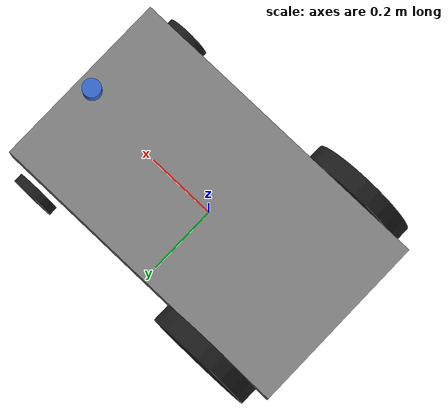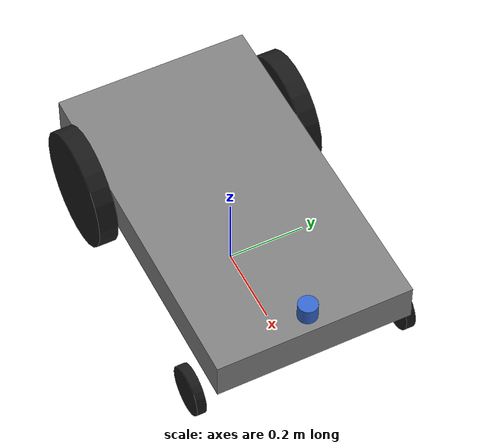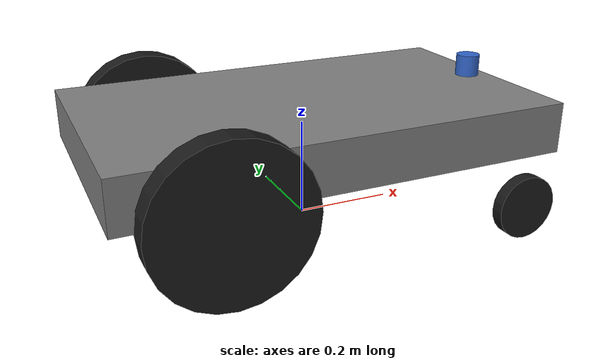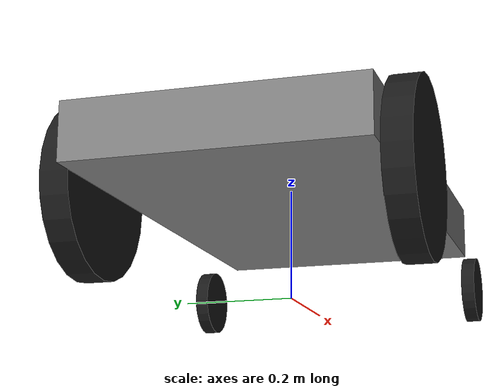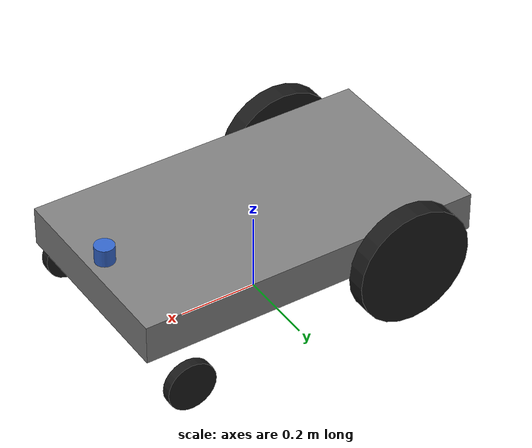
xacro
<?xml version="1.0"?>
<robot name="robosort" xmlns:xacro="http://www.ros.org/wiki/xacro">

  <!-- Properties and Constants -->

  <xacro:property name="PI" value="3.14159265359"/>

  <!-- Robot Body Dimensions (converting inches to meters) -->
  <xacro:property name="body_height" value="0.1016"/>      <!-- 4 inches -->
  <xacro:property name="body_length" value="0.889"/>        <!-- 35 inches -->
  <xacro:property name="body_width" value="0.508"/>         <!-- 20 inches -->

  <!-- Wheel Properties -->
  <xacro:property name="wheel_radius" value="0.1524"/>      <!-- 6 inches (12" diameter) -->
  <xacro:property name="wheel_width" value="0.05"/>         <!-- 2 inches -->
  <xacro:property name="wheel_separation" value="0.558"/>   <!-- 22 inches (20 + 2 per side) -->

  <!-- Caster Wheel Properties -->
  <xacro:property name="caster_radius" value="0.0635"/>    <!-- 5 inch diameter -->
  <xacro:property name="caster_width" value="0.025"/>     <!-- 1 inch width -->
  <xacro:property name="caster_offset_x" value="0.35"/>     <!-- Front position -->
  <xacro:property name="caster_offset_y" value="${wheel_separation/2}"/>     <!-- Aligned with drive wheels -->

  <!-- LiDAR Properties -->
  <xacro:property name="lidar_size" value="0.05"/>
  <xacro:property name="lidar_height" value="0.045"/>     <!-- 45mm height -->
  <xacro:property name="lidar_offset_x" value="0.4008"/>     <!-- Top-front position (moved 2 inches forward) -->
  <xacro:property name="lidar_offset_z" value="${body_height/2 + lidar_height/2}"/>

  <!-- Material Properties -->
  <xacro:property name="body_mass" value="15.0"/>           <!-- kg -->
  <xacro:property name="wheel_mass" value="0.5"/>           <!-- kg -->
  <xacro:property name="caster_mass" value="0.1"/>          <!-- kg -->
  <xacro:property name="lidar_mass" value="0.2"/>           <!-- kg -->

  <!-- Colors -->

  <material name="black">
    <color rgba="0.1 0.1 0.1 1.0"/>
  </material>

  <material name="dark_gray">
    <color rgba="0.3 0.3 0.3 1.0"/>
  </material>

  <material name="gray">
    <color rgba="0.5 0.5 0.5 1.0"/>
  </material>

  <material name="blue">
    <color rgba="0.2 0.4 0.8 1.0"/>
  </material>

  <material name="red">
    <color rgba="0.8 0.2 0.2 1.0"/>
  </material>

  <material name="white">
    <color rgba="0.9 0.9 0.9 1.0"/>
  </material>

  <!-- Inertial Macros -->

  <xacro:macro name="box_inertia" params="m x y z">
    <inertial>
      <mass value="${m}"/>
      <inertia ixx="${m*(y*y+z*z)/12}" ixy="0" ixz="0"
               iyy="${m*(x*x+z*z)/12}" iyz="0"
               izz="${m*(x*x+y*y)/12}"/>
    </inertial>
  </xacro:macro>

  <xacro:macro name="cylinder_inertia" params="m r h">
    <inertial>
      <mass value="${m}"/>
      <inertia ixx="${m*(3*r*r+h*h)/12}" ixy="0" ixz="0"
               iyy="${m*(3*r*r+h*h)/12}" iyz="0"
               izz="${m*r*r/2}"/>
    </inertial>
  </xacro:macro>

  <xacro:macro name="sphere_inertia" params="m r">
    <inertial>
      <mass value="${m}"/>
      <inertia ixx="${2*m*r*r/5}" ixy="0" ixz="0"
               iyy="${2*m*r*r/5}" iyz="0"
               izz="${2*m*r*r/5}"/>
    </inertial>
  </xacro:macro>

  <!-- Base Link (Robot Footprint) -->

  <link name="base_footprint"/>

  <joint name="base_footprint_joint" type="fixed">
    <parent link="base_footprint"/>
    <child link="base_link"/>
    <origin xyz="0 0 ${wheel_radius + body_height/2}" rpy="0 0 0"/>
  </joint>

  <!-- Base Link (Main Body) -->

  <link name="base_link">
    <visual>
      <origin xyz="0 0 0" rpy="0 0 0"/>
      <geometry>
        <box size="${body_length} ${body_width} ${body_height}"/>
      </geometry>
      <material name="gray"/>
    </visual>

    <collision>
      <origin xyz="0 0 0" rpy="0 0 0"/>
      <geometry>
        <box size="${body_length} ${body_width} ${body_height}"/>
      </geometry>
    </collision>

    <xacro:box_inertia m="${body_mass}" x="${body_length}" y="${body_width}" z="${body_height}"/>
  </link>

  <!-- Wheel Macro -->

  <xacro:macro name="wheel" params="prefix reflect axis">
    <link name="${prefix}_wheel_link">
      <visual>
        <origin xyz="0 0 0" rpy="${PI/2} 0 0"/>
        <geometry>
          <cylinder radius="${wheel_radius}" length="${wheel_width}"/>
        </geometry>
        <material name="black"/>
      </visual>

      <collision>
        <origin xyz="0 0 0" rpy="${PI/2} 0 0"/>
        <geometry>
          <cylinder radius="${wheel_radius}" length="${wheel_width}"/>
        </geometry>
      </collision>

      <xacro:cylinder_inertia m="${wheel_mass}" r="${wheel_radius}" h="${wheel_width}"/>
    </link>

    <joint name="${prefix}_wheel_joint" type="continuous">
      <parent link="base_link"/>
      <child link="${prefix}_wheel_link"/>
      <origin xyz="-0.2524 ${reflect*wheel_separation/2} ${-body_height/2}" rpy="0 0 0"/>
      <axis xyz="${axis}"/>
      <limit effort="3.0" velocity="1.4"/>
      <dynamics damping="0.5" friction="0.3"/>
    </joint>
  </xacro:macro>

  <!-- Left and Right Drive Wheels -->
  <xacro:wheel prefix="left" reflect="1" axis="0 1 0"/>
  <xacro:wheel prefix="right" reflect="-1" axis="0 -1 0"/>

  <!-- Caster Wheel Macro -->

  <xacro:macro name="caster_wheel" params="prefix reflect_x reflect_y">
    <link name="${prefix}_caster_link">
      <visual>
        <origin xyz="0 0 0" rpy="${PI/2} 0 0"/>
        <geometry>
          <cylinder radius="${caster_radius}" length="${caster_width}"/>
        </geometry>
        <material name="black"/>
      </visual>

      <collision>
        <origin xyz="0 0 0" rpy="${PI/2} 0 0"/>
        <geometry>
          <cylinder radius="${caster_radius}" length="${caster_width}"/>
        </geometry>
        <surface>
          <friction>
            <ode>
              <mu>0.01</mu>
              <mu2>0.01</mu2>
            </ode>
          </friction>
        </surface>
      </collision>

      <xacro:cylinder_inertia m="${caster_mass}" r="${caster_radius}" h="${caster_width}"/>
    </link>

    <joint name="${prefix}_caster_joint" type="fixed">
      <parent link="base_link"/>
      <child link="${prefix}_caster_link"/>
      <origin xyz="${reflect_x*caster_offset_x} ${reflect_y*caster_offset_y} ${-body_height/2 - 0.1524 + caster_radius}" rpy="0 0 0"/>
    </joint>
  </xacro:macro>

  <!-- Front Caster Wheels -->
  <xacro:caster_wheel prefix="front_left" reflect_x="1" reflect_y="1"/>
  <xacro:caster_wheel prefix="front_right" reflect_x="1" reflect_y="-1"/>

  <!-- LiDAR Sensor -->

  <link name="lidar_link">
    <visual>
      <origin xyz="0 0 0" rpy="0 0 0"/>
      <geometry>
        <cylinder radius="${lidar_size/2}" length="${lidar_height}"/>
      </geometry>
      <material name="blue"/>
    </visual>

    <collision>
      <origin xyz="0 0 0" rpy="0 0 0"/>
      <geometry>
        <cylinder radius="${lidar_size/2}" length="${lidar_height}"/>
      </geometry>
    </collision>

    <xacro:cylinder_inertia m="${lidar_mass}" r="${lidar_size/2}" h="${lidar_height}"/>
  </link>

  <joint name="lidar_joint" type="fixed">
    <parent link="base_link"/>
    <child link="lidar_link"/>
    <origin xyz="${lidar_offset_x} 0 ${lidar_offset_z}" rpy="0 0 0"/>
  </joint>

  <!-- Gazebo Plugins -->

  <!-- Gazebo colors -->
  <gazebo reference="base_link">
    <material>Gazebo/Grey</material>
  </gazebo>

  <gazebo reference="left_wheel_link">
    <material>Gazebo/Black</material>
    <mu1>1.0</mu1>
    <mu2>1.0</mu2>
    <kp>1000000.0</kp>
    <kd>100.0</kd>
    <minDepth>0.001</minDepth>
    <maxVel>1.4</maxVel>
  </gazebo>

  <gazebo reference="right_wheel_link">
    <material>Gazebo/Black</material>
    <mu1>1.0</mu1>
    <mu2>1.0</mu2>
    <kp>1000000.0</kp>
    <kd>100.0</kd>
    <minDepth>0.001</minDepth>
    <maxVel>1.4</maxVel>
  </gazebo>

  <gazebo reference="front_left_caster_link">
    <material>Gazebo/Black</material>
    <mu1>0.01</mu1>
    <mu2>0.01</mu2>
  </gazebo>

  <gazebo reference="front_right_caster_link">
    <material>Gazebo/Black</material>
    <mu1>0.01</mu1>
    <mu2>0.01</mu2>
  </gazebo>

  <gazebo reference="lidar_link">
    <material>Gazebo/Blue</material>
  </gazebo>

  <!-- Differential Drive Controller Plugin -->

  <gazebo>
    <plugin name="diff_drive_controller" filename="libgazebo_ros_diff_drive.so">
      <!-- Update rate in Hz -->
      <update_rate>50</update_rate>

      <!-- Wheel joints -->
      <left_joint>left_wheel_joint</left_joint>
      <right_joint>right_wheel_joint</right_joint>

      <!-- Kinematics -->
      <wheel_separation>${wheel_separation}</wheel_separation>
      <wheel_diameter>${2*wheel_radius}</wheel_diameter>

      <!-- Limits -->
      <max_wheel_torque>3.0</max_wheel_torque>
      <max_wheel_acceleration>0.5</max_wheel_acceleration>

      <!-- Topic names -->
      <command_topic>cmd_vel</command_topic>
      <odometry_topic>odom</odometry_topic>

      <!-- Frames -->
      <odometry_frame>odom</odometry_frame>
      <robot_base_frame>base_footprint</robot_base_frame>

      <!-- Odometry -->
      <publish_odom>true</publish_odom>
      <publish_odom_tf>true</publish_odom_tf>
      <publish_wheel_tf>false</publish_wheel_tf>

      <!-- Covariance -->
      <odometry_source>world</odometry_source>
      <pose_covariance_diagonal>[0.001, 0.001, 0.001, 0.001, 0.001, 0.01]</pose_covariance_diagonal>
      <twist_covariance_diagonal>[0.001, 0.001, 0.001, 0.001, 0.001, 0.01]</twist_covariance_diagonal>
    </plugin>
  </gazebo>

  <!-- LiDAR Sensor Plugin (LD06 Simulation) -->

  <gazebo reference="lidar_link">
    <sensor name="lidar_sensor" type="ray">
      <always_on>true</always_on>
      <update_rate>10</update_rate>
      <visualize>true</visualize>

      <ray>
        <scan>
          <horizontal>
            <samples>360</samples>
            <resolution>1</resolution>
            <min_angle>0</min_angle>
            <max_angle>${2*PI}</max_angle>
          </horizontal>
        </scan>
        <range>
          <min>0.12</min>
          <max>12.0</max>
          <resolution>0.015</resolution>
        </range>
        <noise>
          <type>gaussian</type>
          <mean>0.0</mean>
          <stddev>0.01</stddev>
        </noise>
      </ray>

      <plugin name="lidar_plugin" filename="libgazebo_ros_ray_sensor.so">
        <ros>
          <namespace>/</namespace>
          <remapping>~/out:=scan</remapping>
        </ros>
        <output_type>sensor_msgs/LaserScan</output_type>
        <frame_name>lidar_link</frame_name>
      </plugin>
    </sensor>
  </gazebo>

  <!-- Joint State Publisher -->

  <gazebo>
    <plugin name="joint_state_publisher" filename="libgazebo_ros_joint_state_publisher.so">
      <update_rate>50</update_rate>
      <joint_name>left_wheel_joint</joint_name>
      <joint_name>right_wheel_joint</joint_name>
    </plugin>
  </gazebo>

</robot>
